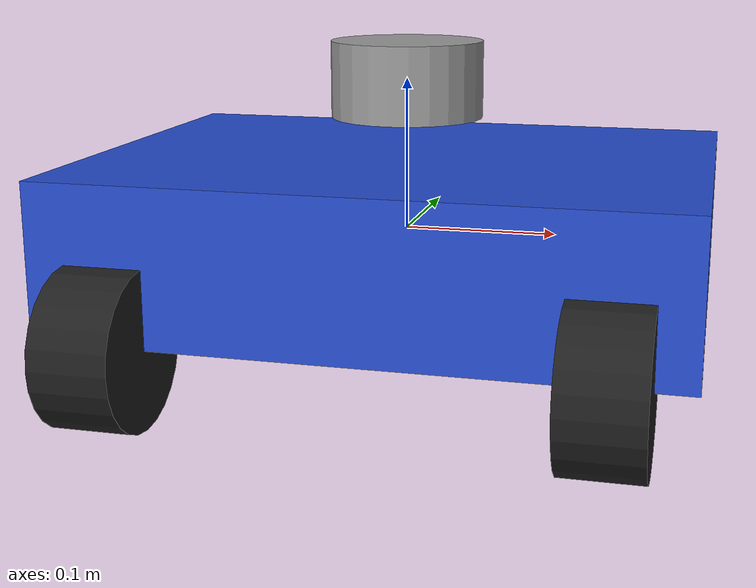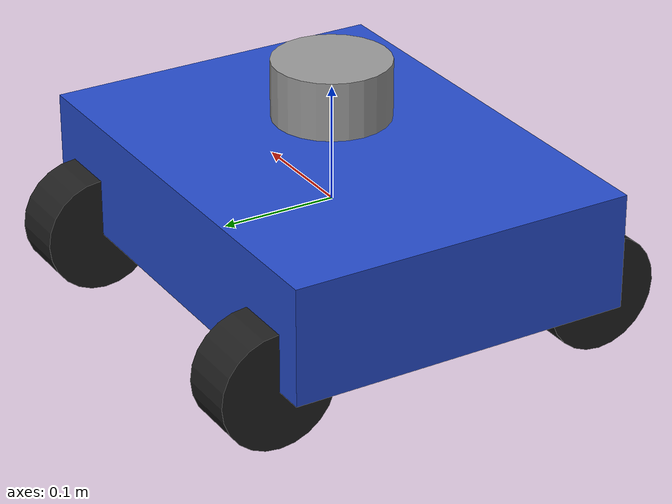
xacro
<?xml version="1.0"?>
<robot name="gpu_slam_bot" xmlns:xacro="http://ros.org/wiki/xacro">

  <!-- Main base link -->
  <link name="base_link">
    <visual>
      <geometry>
        <box size="0.4 0.3 0.1"/>
      </geometry>
      <material name="blue"/>
    </visual>
    <collision>
      <geometry>
        <box size="0.4 0.3 0.1"/>
      </geometry>
    </collision>
    <inertial>
      <mass value="5.0"/>
      <inertia ixx="0.1" iyy="0.1" izz="0.1"/>
    </inertial>
  </link>

  <!-- 4 wheels -->
  <xacro:macro name="wheel" params="name x y">
    <link name="${name}">
      <visual>
        <geometry>
          <cylinder length="0.05" radius="0.05"/>
        </geometry>
        <material name="black"/>
      </visual>
      <collision>
        <geometry>
          <cylinder length="0.05" radius="0.05"/>
        </geometry>
      </collision>
      <inertial>
        <mass value="1.0"/>
        <inertia ixx="0.01" iyy="0.01" izz="0.01"/>
      </inertial>
    </link>
    <joint name="${name}_joint" type="continuous">
      <parent link="base_link"/>
      <child link="${name}"/>
      <origin xyz="${x} ${y} -0.05" rpy="0 1.5708 0"/>
      <axis xyz="0 0 1"/>
    </joint>
  </xacro:macro>

  <xacro:wheel name="front_left_wheel"  x="0.15" y="0.15"/>
  <xacro:wheel name="front_right_wheel" x="0.15" y="-0.15"/>
  <xacro:wheel name="rear_left_wheel"   x="-0.15" y="0.15"/>
  <xacro:wheel name="rear_right_wheel"  x="-0.15" y="-0.15"/>

  <!-- Lidar on top -->
  <link name="lidar_link">
    <visual>
      <geometry>
        <cylinder length="0.05" radius="0.05"/>
      </geometry>
      <material name="grey"/>
    </visual>
  </link>
  <joint name="lidar_joint" type="fixed">
    <parent link="base_link"/>
    <child link="lidar_link"/>
    <origin xyz="0 0 0.1"/>
  </joint>

</robot>
